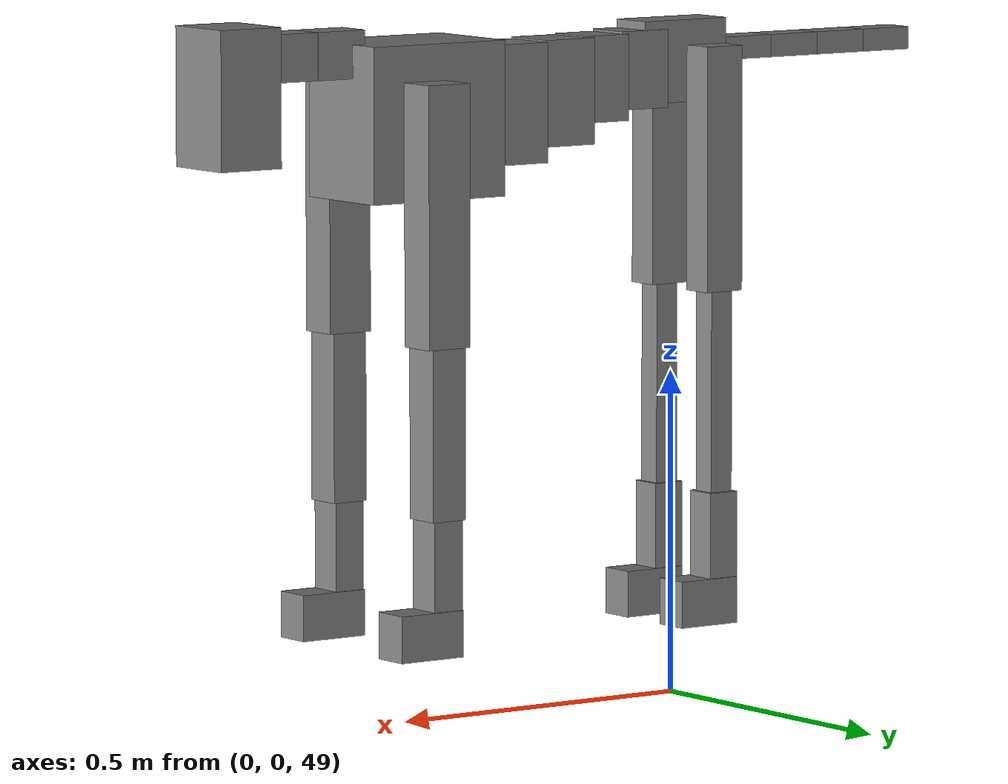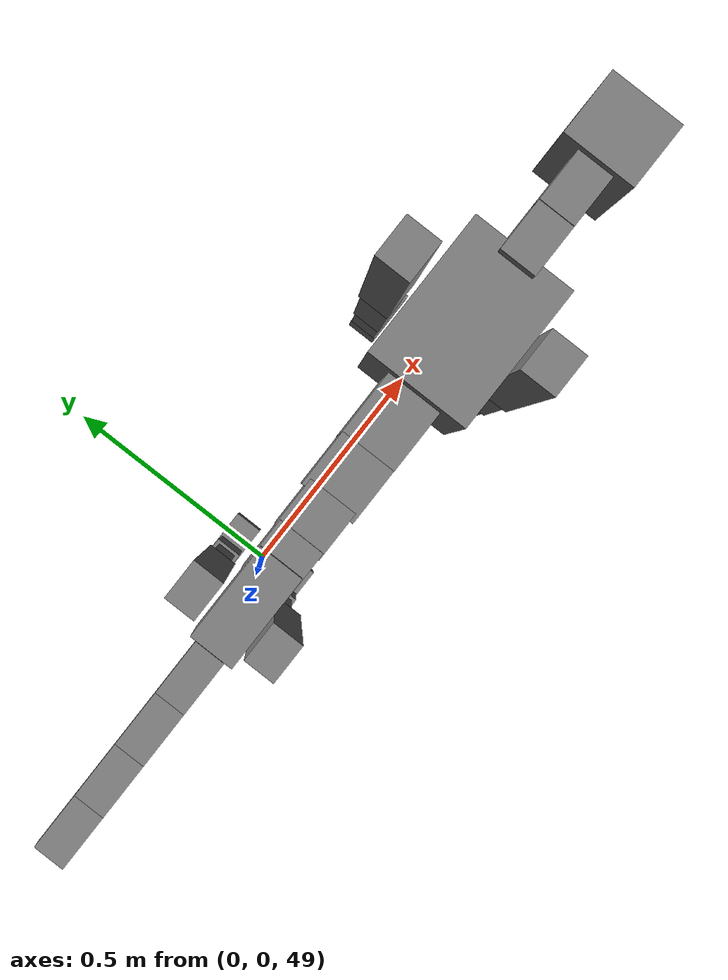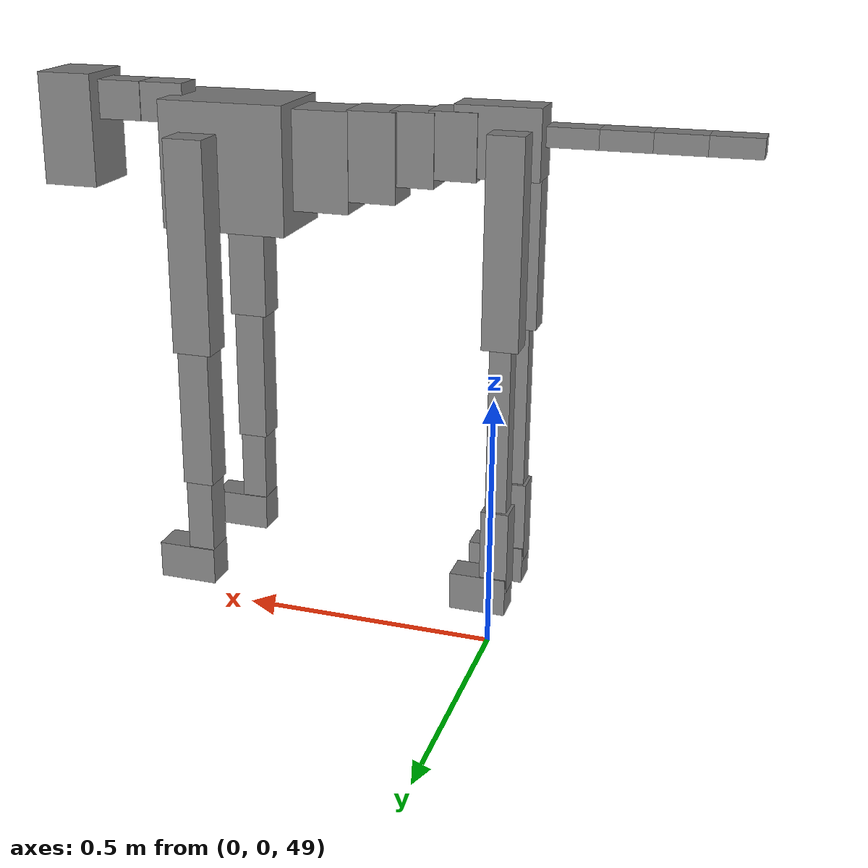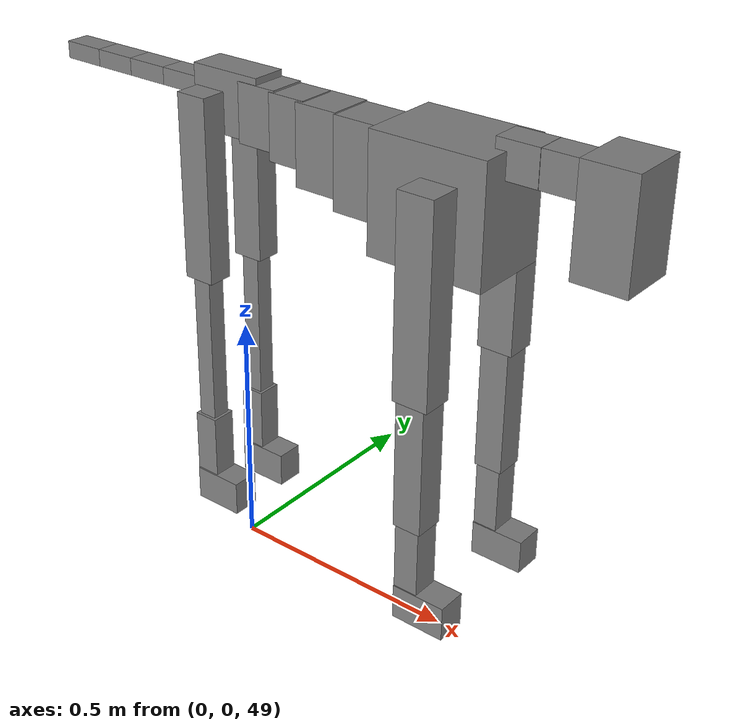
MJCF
<mujoco model="dog">

    <default>
        <joint armature="0.02" stiffness="1" damping="0.2" limited="true"/>
        <geom condim="3" friction="1 0.05 0.05" margin="0.01"/>
        <motor ctrllimited="true" ctrlrange="-1.0 1.0" forcelimited="true" gear="50"/>
    </default>

    <compiler inertiafromgeom="true" angle="radian"/>

    <option timestep="0.016" iterations="50" tolerance="1e-10" solver="Newton" jacobian="dense" cone="pyramidal"/>

    <size nconmax="20000" njmax="60000" nstack="5000000"/>
    <visual>
        <map force="0.1" zfar="30"/>
        <rgba haze="0.15 0.25 0.35 1"/>
        <quality shadowsize="2048"/>
        <global offwidth="800" offheight="800"/>
    </visual>

    <asset>
        <texture type="skybox" builtin="gradient" rgb1="0.3 0.5 0.7" rgb2="0 0 0" width="512" height="512"/>
        <texture name="texplane" type="2d" builtin="checker" rgb1=".2 .3 .4" rgb2=".1 0.15 0.2" width="512" height="512"
                 mark="cross" markrgb=".8 .8 .8"/>
        <texture name="texgeom" type="cube" builtin="flat" mark="cross" width="127" height="1278" rgb1="0.8 0.6 0.4"
                 rgb2="0.8 0.6 0.4" markrgb="1 1 1" random="0.01"/>

        <material name="matplane" reflectance="0.3" texture="texplane" texrepeat="1 1" texuniform="true"/>
        <material name="matgeom" texture="texgeom" texuniform="true" rgba="0.8 0.6 .4 1"/>
    </asset>

    <worldbody>
        <geom name="floor" pos="0 0 0" size="0 0 .25" type="plane" material="matplane" condim="3"/>

        <light directional="false" diffuse=".2 .2 .2" specular="0 0 0" pos="0 0 5" dir="0 0 -1" castshadow="false"/>
        <light mode="targetbodycom" target="torso" directional="false" diffuse=".8 .8 .8" specular="0.3 0.3 0.3"
               pos="0 0 4.0" dir="0 0 -1"/>

        <body name="root" pos="0 0 50">
            <freejoint name="root_1"/>
            <geom type="box" pos="0 0 -0.02" size="0.0774  0.0358  0.063" density="2030"/>

            <body name="spine1" pos="0.054 0 0">
                <joint name="spine1_y" axis="0 1 0" range="0 0.7" limited="true"/>
                <geom type="box" pos="0.02375 0 -0.03" size="0.04375  0.0375  0.05985" density="2030"/>

                <body name="spine2" pos="0.0612 0 0">
                    <joint name="spine2_y" axis="0 1 0" range="-0.15 0.15" limited="true"/>
                    <geom type="box" pos="0.03555  0  -0.04" size="0.04055  0.039  0.06615" density="2030"/>

                    <body name="spine3" pos="0.0730 0 0">
                        <joint name="spine3_y" axis="0 1 0" range="-0.15 0.15" limited="true"/>
                        <geom type="box" pos="0.03555  0  -0.057" size="0.04555  0.0445  0.081" density="2030"/>

                        <body name="spine4" pos="0.0780 0 0">
                            <joint name="spine4_y" axis="0 1 0" range="-0.15 0.15" limited="true"/>
                            <geom type="box" pos="0.05265  0  -0.07" size="0.05265  0.045  0.09135" density="2030"/>

                            <body name="torso" pos="0.1082 0 0">
                                <joint name="torso_y" axis="0 1 0" range="-0.15 0.15" limited="true"/>
                                <geom type="box" pos="0.11925  0  -0.085" size="0.11925  0.085  0.11745"
                                      density="2030"/>

                                <body name="neck1" pos="0.2160  0   0.0180">
                                    <joint name="neck1_y" axis="0 1 0" range="-1.2  -1" limited="true"/>
                                    <geom type="box" pos="0.0423  0  0" size="0.0423  0.03  0.036" density="2325"/>

                                    <body name="neck2" pos="0.0853  0  0">
                                        <joint name="neck2_y" axis="0 1 0" range="0.1  0" limited="true"/>
                                        <geom type="box" pos="0.0423  0  0" size="0.0423  0.03  0.036" density="2325"/>

                                        <body name="head" pos="0.0853  0  0">
                                            <joint name="head_y" axis="0 1 0" range="-0.3  -0.2" limited="true"/>
                                            <geom type="box" pos="0.0531  0  -0.055" size="0.0531  0.06  0.1044"
                                                  density="4030"/>

                                        </body>
                                    </body>
                                </body>

                                <body name="front_shoulder" pos="0.156  0   -0.0480">
                                    <joint name="front_shoulder_y" axis="0 1 0" range="-1 1.5" limited="true"/>
                                    <geom type="box" pos="0 0.13 -0.1703" size="0.0371  0.0317  0.1969" density="1158"/>
                                    <geom type="box" pos="0 -0.13 -0.1703" size="0.0371  0.0317  0.1969"
                                          density="1158"/>

                                    <body name="front_elbow" pos="0  0  -0.3405">
                                        <joint name="front_elbow_y" axis="0 1 0" range="-2 0" limited="true"/>
                                        <geom type="box" pos="0 0.13 -0.1423" size="0.0295  0.0301  0.1423"
                                              density="1081"/>
                                        <geom type="box" pos="0 -0.13 -0.1423" size="0.0295  0.0301  0.1423"
                                              density="1081"/>

                                        <body name="front_wrist" pos="0  0  -0.2846">
                                            <joint name="front_wrist_y" axis="0 1 0" range="-0.2 0" limited="true"/>
                                            <geom type="box" pos="0 0.13 -0.0753" size="0.0253  0.0281  0.0884"
                                                  density="1664"/>
                                            <geom type="box" pos="0 -0.13 -0.0753" size="0.0253  0.0281  0.0884"
                                                  density="1664"/>

                                            <body name="front_finger_end" pos="0  0  -0.1506">
                                                <joint name="front_finger_y" axis="0 1 0" range="-0.4 1"
                                                       limited="true"/>
                                                <geom type="box" pos="0.0305  0.13  -0.0203"
                                                      size="0.0559  0.0305  0.0353" density="1515"/>
                                                <geom type="box" pos="0.0305  -0.13  -0.0203"
                                                      size="0.0559  0.0305  0.0353" density="1515"/>

                                            </body>

                                        </body>
                                    </body>
                                </body>

                            </body>
                        </body>
                    </body>
                </body>
            </body>

            <body name="back_hip" pos="-0.03 0 -0.018">
                <joint name="back_hip_y" axis="0 1 0" range="-1.5 0.3" limited="true"/>
                <geom type="box" pos="0 0.07 -0.1654" size="0.0333  0.0262  0.1882" density="1154"/>
                <geom type="box" pos="0 -0.07 -0.1654" size="0.0333  0.0262  0.1882" density="1154"/>

                <body name="back_knee" pos="0  0  -0.3309">
                    <joint name="back_knee_y" axis="0 1 0" range="0 2.8" limited="true"/>
                    <geom type="box" pos="0 0.07 -0.1720" size="0.0196  0.0193  0.1875" density="1227"/>
                    <geom type="box" pos="0 -0.07 -0.1720" size="0.0196  0.0193  0.1875" density="1227"/>

                    <body name="back_ankle" pos="0  0  -0.3439">
                        <joint name="back_ankle_y" axis="0 1 0" range="-2.2 0" limited="true"/>
                        <geom type="box" pos="0 0.07 -0.0680" size="0.0257  0.0257  0.0792" density="1284"/>
                        <geom type="box" pos="0 -0.07 -0.0680" size="0.0257  0.0257  0.0792" density="1284"/>

                        <body name="back_toe_end" pos="0  0  -0.1360">
                            <joint name="back_toe_y" axis="0 1 0" range="-0.4 1" limited="true"/>
                            <geom type="box" pos="0.0287  0.07  -0.0208" size="0.0527  0.0287  0.0358" density="1515"/>
                            <geom type="box" pos="0.0287  -0.07  -0.0208" size="0.0527  0.0287  0.0358" density="1515"/>

                        </body>
                    </body>
                </body>
            </body>

            <body name="tail1" pos="-0.074 0 -0.006">
                <joint name="tail1_y" axis="0 1 0" range="-0.2 0.2" limited="true"/>
                <geom type="box" pos="-0.0536  0  0" size="0.045  0.025  0.0175" density="1587"/>

                <body name="tail2" pos="-0.09 0 0">
                    <joint name="tail2_y" axis="0 1 0" range="-0.2 0.2" limited="true"/>
                    <geom type="box" pos="-0.0536  0  0" size="0.045  0.025  0.0175" density="1587"/>

                    <body name="tail3" pos="-0.09 0 0">
                        <joint name="tail3_y" axis="0 1 0" range="-0.2 0.2" limited="true"/>
                        <geom type="box" pos="-0.0536  0  0" size="0.045  0.025  0.0175" density="1587"/>

                        <body name="tail4" pos="-0.09 0 0">
                            <joint name="tail4_y" axis="0 1 0" range="-0.2 0.2" limited="true"/>
                            <geom type="box" pos="-0.0536  0  0" size="0.045  0.025  0.0175" density="1587"/>

                        </body>
                    </body>
                </body>
            </body>
        </body>
    </worldbody>

    <actuator>
        <motor joint="spine1_y" forcerange="-150 150     "/>
        <motor joint="spine2_y" forcerange="-150 150     "/>
        <motor joint="spine3_y" forcerange="-150 150     "/>
        <motor joint="spine4_y" forcerange="-150 150     "/>
        <motor joint="torso_y" forcerange="-150 150     "/>
        <motor joint="neck1_y" forcerange="-100 100       "/>
        <motor joint="neck2_y" forcerange="-100 100       "/>
        <motor joint="head_y" forcerange="-150 150       "/>
        <motor joint="front_shoulder_y" forcerange="-168.89 142.34"/>
        <motor joint="front_elbow_y" forcerange="-183.08 135.89"/>
        <motor joint="front_wrist_y" forcerange="-79.39 145.57"/>
        <motor joint="front_finger_y" forcerange="-47.03 75.65"/>
        <motor joint="back_hip_y" forcerange="-345.83 202.92"/>
        <motor joint="back_knee_y" forcerange="-275.26 205.99"/>
        <motor joint="back_angle_y" forcerange="-178.39 133.59"/>
        <motor joint="back_toe_y" forcerange="-106.00 43.96"/>
        <motor joint="tail1_y" forcerange="-50 50     "/>
        <motor joint="tail2_y" forcerange="-50 50     "/>
        <motor joint="tail3_y" forcerange="-50 50     "/>
        <motor joint="tail4_y" forcerange="-50 50     "/>
    </actuator>
</mujoco>
